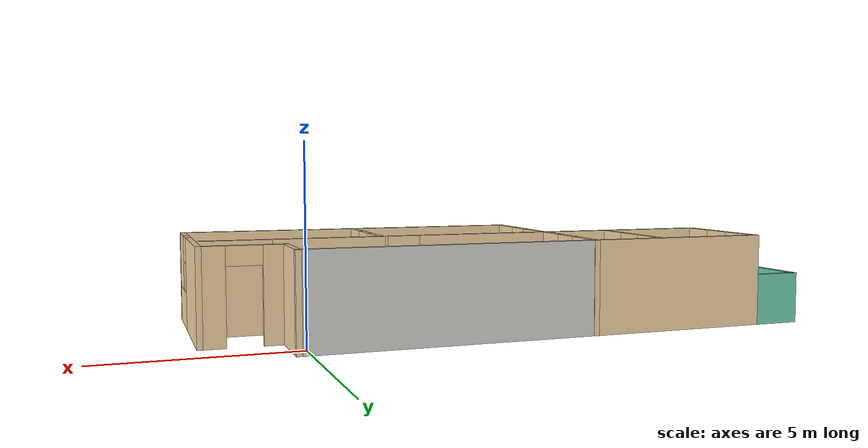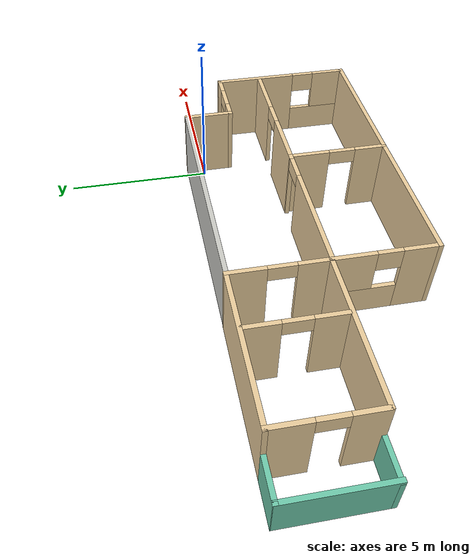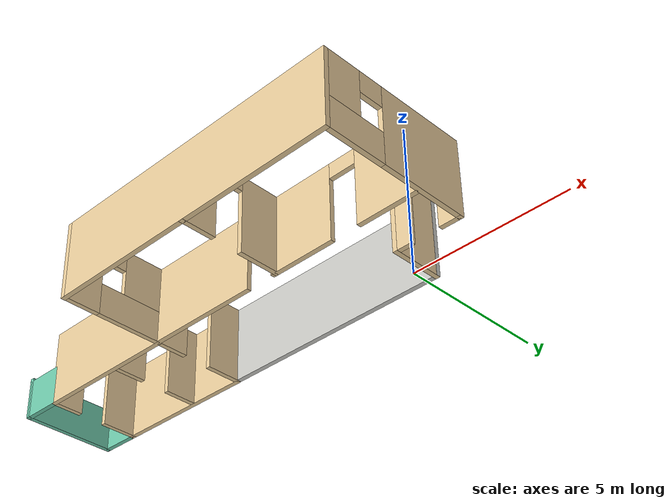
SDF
<?xml version='1.0'?>
<sdf version='1.6'>
  <model name='myhouse'>
    <pose frame=''>-5.65027 -2.655 0 0 -0 0</pose>
    <link name='Wall_0'>
      <pose frame=''>7.00027 1.625 0 0 -0 0</pose>
      <visual name='Wall_0_Visual_0'>
        <pose frame=''>-0.804089 0 1.25 0 -0 0</pose>
        <geometry>
          <box>
            <size>0.641821 0.15 2.5</size>
          </box>
        </geometry>
        <material>
          <script>
            <uri>file://media/materials/scripts/gazebo.material</uri>
            <name>Gazebo/Grey</name>
          </script>
          <ambient>0.921569 0.807843 0.615686 1</ambient>
        </material>
        <meta>
          <layer>0</layer>
        </meta>
      </visual>
      <collision name='Wall_0_Collision_0'>
        <geometry>
          <box>
            <size>0.641821 0.15 2.5</size>
          </box>
        </geometry>
        <pose frame=''>-0.804089 0 1.25 0 -0 0</pose>
      </collision>
      <visual name='Wall_0_Visual_1'>
        <pose frame=''>0.770911 0 1.25 0 -0 0</pose>
        <geometry>
          <box>
            <size>0.708179 0.15 2.5</size>
          </box>
        </geometry>
        <material>
          <script>
            <uri>file://media/materials/scripts/gazebo.material</uri>
            <name>Gazebo/Grey</name>
          </script>
          <ambient>0.921569 0.807843 0.615686 1</ambient>
        </material>
        <meta>
          <layer>0</layer>
        </meta>
      </visual>
      <collision name='Wall_0_Collision_1'>
        <geometry>
          <box>
            <size>0.708179 0.15 2.5</size>
          </box>
        </geometry>
        <pose frame=''>0.770911 0 1.25 0 -0 0</pose>
      </collision>
      <visual name='Wall_0_Visual_2'>
        <pose frame=''>-0.033179 0 2.25 0 -0 0</pose>
        <geometry>
          <box>
            <size>0.9 0.15 0.5</size>
          </box>
        </geometry>
        <material>
          <script>
            <uri>file://media/materials/scripts/gazebo.material</uri>
            <name>Gazebo/Grey</name>
          </script>
          <ambient>0.921569 0.807843 0.615686 1</ambient>
        </material>
        <meta>
          <layer>0</layer>
        </meta>
      </visual>
      <collision name='Wall_0_Collision_2'>
        <geometry>
          <box>
            <size>0.9 0.15 0.5</size>
          </box>
        </geometry>
        <pose frame=''>-0.033179 0 2.25 0 -0 0</pose>
      </collision>
    </link>
    <link name='Wall_11'>
      <pose frame=''>5.50113 0.078954 0 0 -0 3.14159</pose>
      <visual name='Wall_11_Visual_0'>
        <pose frame=''>-1.5197 0 1.25 0 -0 0</pose>
        <geometry>
          <box>
            <size>1.9606 0.15 2.5</size>
          </box>
        </geometry>
        <material>
          <script>
            <uri>file://media/materials/scripts/gazebo.material</uri>
            <name>Gazebo/Grey</name>
          </script>
          <ambient>0.921569 0.807843 0.615686 1</ambient>
        </material>
        <meta>
          <layer>0</layer>
        </meta>
      </visual>
      <collision name='Wall_11_Collision_0'>
        <geometry>
          <box>
            <size>1.9606 0.15 2.5</size>
          </box>
        </geometry>
        <pose frame=''>-1.5197 0 1.25 0 -0 0</pose>
      </collision>
      <visual name='Wall_11_Visual_1'>
        <pose frame=''>1.4303 0 1.25 0 -0 0</pose>
        <geometry>
          <box>
            <size>2.13941 0.15 2.5</size>
          </box>
        </geometry>
        <material>
          <script>
            <uri>file://media/materials/scripts/gazebo.material</uri>
            <name>Gazebo/Grey</name>
          </script>
          <ambient>0.921569 0.807843 0.615686 1</ambient>
        </material>
        <meta>
          <layer>0</layer>
        </meta>
      </visual>
      <collision name='Wall_11_Collision_1'>
        <geometry>
          <box>
            <size>2.13941 0.15 2.5</size>
          </box>
        </geometry>
        <pose frame=''>1.4303 0 1.25 0 -0 0</pose>
      </collision>
      <visual name='Wall_11_Visual_2'>
        <pose frame=''>-0.089405 0 2.25 0 -0 0</pose>
        <geometry>
          <box>
            <size>0.9 0.15 0.5</size>
          </box>
        </geometry>
        <material>
          <script>
            <uri>file://media/materials/scripts/gazebo.material</uri>
            <name>Gazebo/Grey</name>
          </script>
          <ambient>0.921569 0.807843 0.615686 1</ambient>
        </material>
        <meta>
          <layer>0</layer>
        </meta>
      </visual>
      <collision name='Wall_11_Collision_2'>
        <geometry>
          <box>
            <size>0.9 0.15 0.5</size>
          </box>
        </geometry>
        <pose frame=''>-0.089405 0 2.25 0 -0 0</pose>
      </collision>
    </link>
    <link name='Wall_12'>
      <pose frame=''>3.07613 -1.57105 0 0 -0 -1.5708</pose>
      <visual name='Wall_12_Visual_0'>
        <pose frame=''>-1.01083 0 1.25 0 -0 0</pose>
        <geometry>
          <box>
            <size>1.42834 0.15 2.5</size>
          </box>
        </geometry>
        <material>
          <script>
            <uri>file://media/materials/scripts/gazebo.material</uri>
            <name>Gazebo/Grey</name>
          </script>
          <ambient>0.921569 0.807843 0.615686 1</ambient>
        </material>
        <meta>
          <layer>0</layer>
        </meta>
      </visual>
      <collision name='Wall_12_Collision_0'>
        <geometry>
          <box>
            <size>1.42834 0.15 2.5</size>
          </box>
        </geometry>
        <pose frame=''>-1.01083 0 1.25 0 -0 0</pose>
      </collision>
      <visual name='Wall_12_Visual_1'>
        <pose frame=''>1.16417 0 1.25 0 -0 0</pose>
        <geometry>
          <box>
            <size>1.12166 0.15 2.5</size>
          </box>
        </geometry>
        <material>
          <script>
            <uri>file://media/materials/scripts/gazebo.material</uri>
            <name>Gazebo/Grey</name>
          </script>
          <ambient>0.921569 0.807843 0.615686 1</ambient>
        </material>
        <meta>
          <layer>0</layer>
        </meta>
      </visual>
      <collision name='Wall_12_Collision_1'>
        <geometry>
          <box>
            <size>1.12166 0.15 2.5</size>
          </box>
        </geometry>
        <pose frame=''>1.16417 0 1.25 0 -0 0</pose>
      </collision>
      <visual name='Wall_12_Visual_2'>
        <pose frame=''>0.153338 0 2.25 0 -0 0</pose>
        <geometry>
          <box>
            <size>0.9 0.15 0.5</size>
          </box>
        </geometry>
        <material>
          <script>
            <uri>file://media/materials/scripts/gazebo.material</uri>
            <name>Gazebo/Grey</name>
          </script>
          <ambient>0.921569 0.807843 0.615686 1</ambient>
        </material>
        <meta>
          <layer>0</layer>
        </meta>
      </visual>
      <collision name='Wall_12_Collision_2'>
        <geometry>
          <box>
            <size>0.9 0.15 0.5</size>
          </box>
        </geometry>
        <pose frame=''>0.153338 0 2.25 0 -0 0</pose>
      </collision>
    </link>
    <link name='Wall_17'>
      <pose frame=''>0.651128 0.078954 0 0 -0 3.14159</pose>
      <visual name='Wall_17_Visual_0'>
        <pose frame=''>-2.3846 0 1.25 0 -0 0</pose>
        <geometry>
          <box>
            <size>0.230798 0.15 2.5</size>
          </box>
        </geometry>
        <material>
          <script>
            <uri>file://media/materials/scripts/gazebo.material</uri>
            <name>Gazebo/Grey</name>
          </script>
          <ambient>0.921569 0.807843 0.615686 1</ambient>
        </material>
        <meta>
          <layer>0</layer>
        </meta>
      </visual>
      <collision name='Wall_17_Collision_0'>
        <geometry>
          <box>
            <size>0.230798 0.15 2.5</size>
          </box>
        </geometry>
        <pose frame=''>-2.3846 0 1.25 0 -0 0</pose>
      </collision>
      <visual name='Wall_17_Visual_1'>
        <pose frame=''>0.565399 0 1.25 0 -0 0</pose>
        <geometry>
          <box>
            <size>3.8692 0.15 2.5</size>
          </box>
        </geometry>
        <material>
          <script>
            <uri>file://media/materials/scripts/gazebo.material</uri>
            <name>Gazebo/Grey</name>
          </script>
          <ambient>0.921569 0.807843 0.615686 1</ambient>
        </material>
        <meta>
          <layer>0</layer>
        </meta>
      </visual>
      <collision name='Wall_17_Collision_1'>
        <geometry>
          <box>
            <size>3.8692 0.15 2.5</size>
          </box>
        </geometry>
        <pose frame=''>0.565399 0 1.25 0 -0 0</pose>
      </collision>
      <visual name='Wall_17_Visual_2'>
        <pose frame=''>-1.8192 0 2.25 0 -0 0</pose>
        <geometry>
          <box>
            <size>0.9 0.15 0.5</size>
          </box>
        </geometry>
        <material>
          <script>
            <uri>file://media/materials/scripts/gazebo.material</uri>
            <name>Gazebo/Grey</name>
          </script>
          <ambient>0.921569 0.807843 0.615686 1</ambient>
        </material>
        <meta>
          <layer>0</layer>
        </meta>
      </visual>
      <collision name='Wall_17_Collision_2'>
        <geometry>
          <box>
            <size>0.9 0.15 0.5</size>
          </box>
        </geometry>
        <pose frame=''>-1.8192 0 2.25 0 -0 0</pose>
      </collision>
    </link>
    <link name='Wall_20'>
      <pose frame=''>-1.79973 -1.5595 0 0 -0 1.5708</pose>
      <visual name='Wall_20_Visual_0'>
        <pose frame=''>-1.13454 0 1.25 0 -0 0</pose>
        <geometry>
          <box>
            <size>1.21192 0.15 2.5</size>
          </box>
        </geometry>
        <material>
          <script>
            <uri>file://media/materials/scripts/gazebo.material</uri>
            <name>Gazebo/Grey</name>
          </script>
          <ambient>0.921569 0.807843 0.615686 1</ambient>
        </material>
        <meta>
          <layer>0</layer>
        </meta>
      </visual>
      <collision name='Wall_20_Collision_0'>
        <geometry>
          <box>
            <size>1.21192 0.15 2.5</size>
          </box>
        </geometry>
        <pose frame=''>-1.13454 0 1.25 0 -0 0</pose>
      </collision>
      <visual name='Wall_20_Visual_1'>
        <pose frame=''>0.605958 0 0.5 0 -0 0</pose>
        <geometry>
          <box>
            <size>2.26908 0.15 1</size>
          </box>
        </geometry>
        <material>
          <script>
            <uri>file://media/materials/scripts/gazebo.material</uri>
            <name>Gazebo/Grey</name>
          </script>
          <ambient>0.921569 0.807843 0.615686 1</ambient>
        </material>
        <meta>
          <layer>0</layer>
        </meta>
      </visual>
      <collision name='Wall_20_Collision_1'>
        <geometry>
          <box>
            <size>2.26908 0.15 1</size>
          </box>
        </geometry>
        <pose frame=''>0.605958 0 0.5 0 -0 0</pose>
      </collision>
      <visual name='Wall_20_Visual_2'>
        <pose frame=''>1.00596 0 1.75 0 -0 0</pose>
        <geometry>
          <box>
            <size>1.46908 0.15 1.5</size>
          </box>
        </geometry>
        <material>
          <script>
            <uri>file://media/materials/scripts/gazebo.material</uri>
            <name>Gazebo/Grey</name>
          </script>
          <ambient>0.921569 0.807843 0.615686 1</ambient>
        </material>
        <meta>
          <layer>0</layer>
        </meta>
      </visual>
      <collision name='Wall_20_Collision_2'>
        <geometry>
          <box>
            <size>1.46908 0.15 1.5</size>
          </box>
        </geometry>
        <pose frame=''>1.00596 0 1.75 0 -0 0</pose>
      </collision>
      <visual name='Wall_20_Visual_3'>
        <pose frame=''>-0.128584 0 2.15 0 -0 0</pose>
        <geometry>
          <box>
            <size>0.8 0.15 0.7</size>
          </box>
        </geometry>
        <material>
          <script>
            <uri>file://media/materials/scripts/gazebo.material</uri>
            <name>Gazebo/Grey</name>
          </script>
          <ambient>0.921569 0.807843 0.615686 1</ambient>
        </material>
        <meta>
          <layer>0</layer>
        </meta>
      </visual>
      <collision name='Wall_20_Collision_3'>
        <geometry>
          <box>
            <size>0.8 0.15 0.7</size>
          </box>
        </geometry>
        <pose frame=''>-0.128584 0 2.15 0 -0 0</pose>
      </collision>
    </link>
    <link name='Wall_29'>
      <collision name='Wall_29_Collision'>
        <geometry>
          <box>
            <size>1.74 0.15 2.5</size>
          </box>
        </geometry>
        <pose frame=''>0 0 1.25 0 -0 0</pose>
      </collision>
      <visual name='Wall_29_Visual'>
        <pose frame=''>0 0 1.25 0 -0 0</pose>
        <geometry>
          <box>
            <size>1.74 0.15 2.5</size>
          </box>
        </geometry>
        <material>
          <script>
            <uri>file://media/materials/scripts/gazebo.material</uri>
            <name>Gazebo/Grey</name>
          </script>
          <ambient>0.921569 0.807843 0.615686 1</ambient>
        </material>
        <meta>
          <layer>0</layer>
        </meta>
      </visual>
      <pose frame=''>5.95027 2.42 0 0 -0 1.5708</pose>
    </link>
    <link name='Wall_30'>
      <collision name='Wall_30_Collision'>
        <geometry>
          <box>
            <size>7.75 0.15 2.5</size>
          </box>
        </geometry>
        <pose frame=''>0 0 1.25 0 -0 0</pose>
      </collision>
      <visual name='Wall_30_Visual'>
        <pose frame=''>0 0 1.25 0 -0 0</pose>
        <geometry>
          <box>
            <size>7.75 0.15 2.5</size>
          </box>
        </geometry>
        <material>
          <script>
            <uri>file://media/materials/scripts/gazebo.material</uri>
            <name>Gazebo/CeilingTiled</name>
          </script>
          <ambient>0.921569 0.807843 0.615686 1</ambient>
        </material>
        <meta>
          <layer>0</layer>
        </meta>
      </visual>
      <pose frame=''>2.15027 3.215 0 0 -0 3.14159</pose>
    </link>
    <link name='Wall_32'>
      <pose frame=''>-1.79973 1.6655 0 0 -0 1.5708</pose>
      <visual name='Wall_32_Visual_0'>
        <pose frame=''>-1.09237 0 1.25 0 -0 0</pose>
        <geometry>
          <box>
            <size>1.08427 0.15 2.5</size>
          </box>
        </geometry>
        <material>
          <script>
            <uri>file://media/materials/scripts/gazebo.material</uri>
            <name>Gazebo/Grey</name>
          </script>
          <ambient>0.921569 0.807843 0.615686 1</ambient>
        </material>
        <meta>
          <layer>0</layer>
        </meta>
      </visual>
      <collision name='Wall_32_Collision_0'>
        <geometry>
          <box>
            <size>1.08427 0.15 2.5</size>
          </box>
        </geometry>
        <pose frame=''>-1.09237 0 1.25 0 -0 0</pose>
      </collision>
      <visual name='Wall_32_Visual_1'>
        <pose frame=''>0.992134 0 1.25 0 -0 0</pose>
        <geometry>
          <box>
            <size>1.28473 0.15 2.5</size>
          </box>
        </geometry>
        <material>
          <script>
            <uri>file://media/materials/scripts/gazebo.material</uri>
            <name>Gazebo/Grey</name>
          </script>
          <ambient>0.921569 0.807843 0.615686 1</ambient>
        </material>
        <meta>
          <layer>0</layer>
        </meta>
      </visual>
      <collision name='Wall_32_Collision_1'>
        <geometry>
          <box>
            <size>1.28473 0.15 2.5</size>
          </box>
        </geometry>
        <pose frame=''>0.992134 0 1.25 0 -0 0</pose>
      </collision>
      <visual name='Wall_32_Visual_2'>
        <pose frame=''>-0.100233 0 2.25 0 -0 0</pose>
        <geometry>
          <box>
            <size>0.9 0.15 0.5</size>
          </box>
        </geometry>
        <material>
          <script>
            <uri>file://media/materials/scripts/gazebo.material</uri>
            <name>Gazebo/Grey</name>
          </script>
          <ambient>0.921569 0.807843 0.615686 1</ambient>
        </material>
        <meta>
          <layer>0</layer>
        </meta>
      </visual>
      <collision name='Wall_32_Collision_2'>
        <geometry>
          <box>
            <size>0.9 0.15 0.5</size>
          </box>
        </geometry>
        <pose frame=''>-0.100233 0 2.25 0 -0 0</pose>
      </collision>
    </link>
    <link name='Wall_37'>
      <collision name='Wall_37_Collision'>
        <geometry>
          <box>
            <size>5.1 0.15 2.5</size>
          </box>
        </geometry>
        <pose frame=''>0 0 1.25 0 -0 0</pose>
      </collision>
      <visual name='Wall_37_Visual'>
        <pose frame=''>0 0 1.25 0 -0 0</pose>
        <geometry>
          <box>
            <size>5.1 0.15 2.5</size>
          </box>
        </geometry>
        <material>
          <script>
            <uri>file://media/materials/scripts/gazebo.material</uri>
            <name>Gazebo/Grey</name>
          </script>
          <ambient>0.921569 0.807843 0.615686 1</ambient>
        </material>
        <meta>
          <layer>0</layer>
        </meta>
      </visual>
      <pose frame=''>-4.27473 3.225 0 0 -0 3.14159</pose>
    </link>
    <link name='Wall_51'>
      <pose frame=''>-3.76973 1.695 0 0 -0 -1.5708</pose>
      <visual name='Wall_51_Visual_0'>
        <pose frame=''>-0.966083 0 1.25 0 -0 0</pose>
        <geometry>
          <box>
            <size>1.16783 0.15 2.5</size>
          </box>
        </geometry>
        <material>
          <script>
            <uri>file://media/materials/scripts/gazebo.material</uri>
            <name>Gazebo/Grey</name>
          </script>
          <ambient>0.921569 0.807843 0.615686 1</ambient>
        </material>
        <meta>
          <layer>0</layer>
        </meta>
      </visual>
      <collision name='Wall_51_Collision_0'>
        <geometry>
          <box>
            <size>1.16783 0.15 2.5</size>
          </box>
        </geometry>
        <pose frame=''>-0.966083 0 1.25 0 -0 0</pose>
      </collision>
      <visual name='Wall_51_Visual_1'>
        <pose frame=''>1.03392 0 1.25 0 -0 0</pose>
        <geometry>
          <box>
            <size>1.03217 0.15 2.5</size>
          </box>
        </geometry>
        <material>
          <script>
            <uri>file://media/materials/scripts/gazebo.material</uri>
            <name>Gazebo/Grey</name>
          </script>
          <ambient>0.921569 0.807843 0.615686 1</ambient>
        </material>
        <meta>
          <layer>0</layer>
        </meta>
      </visual>
      <collision name='Wall_51_Collision_1'>
        <geometry>
          <box>
            <size>1.03217 0.15 2.5</size>
          </box>
        </geometry>
        <pose frame=''>1.03392 0 1.25 0 -0 0</pose>
      </collision>
      <visual name='Wall_51_Visual_2'>
        <pose frame=''>0.067833 0 2.25 0 -0 0</pose>
        <geometry>
          <box>
            <size>0.9 0.15 0.5</size>
          </box>
        </geometry>
        <material>
          <script>
            <uri>file://media/materials/scripts/gazebo.material</uri>
            <name>Gazebo/Grey</name>
          </script>
          <ambient>0.921569 0.807843 0.615686 1</ambient>
        </material>
        <meta>
          <layer>0</layer>
        </meta>
      </visual>
      <collision name='Wall_51_Collision_2'>
        <geometry>
          <box>
            <size>0.9 0.15 0.5</size>
          </box>
        </geometry>
        <pose frame=''>0.067833 0 2.25 0 -0 0</pose>
      </collision>
    </link>
    <link name='Wall_55'>
      <pose frame=''>-6.73773 1.6725 0 0 -0 -1.5708</pose>
      <visual name='Wall_55_Visual_0'>
        <pose frame=''>-0.974197 0 1.25 0 -0 0</pose>
        <geometry>
          <box>
            <size>1.30661 0.15 2.5</size>
          </box>
        </geometry>
        <material>
          <script>
            <uri>file://media/materials/scripts/gazebo.material</uri>
            <name>Gazebo/Grey</name>
          </script>
          <ambient>0.921569 0.807843 0.615686 1</ambient>
        </material>
        <meta>
          <layer>0</layer>
        </meta>
      </visual>
      <collision name='Wall_55_Collision_0'>
        <geometry>
          <box>
            <size>1.30661 0.15 2.5</size>
          </box>
        </geometry>
        <pose frame=''>-0.974197 0 1.25 0 -0 0</pose>
      </collision>
      <visual name='Wall_55_Visual_1'>
        <pose frame=''>1.1033 0 1.25 0 -0 0</pose>
        <geometry>
          <box>
            <size>1.04839 0.15 2.5</size>
          </box>
        </geometry>
        <material>
          <script>
            <uri>file://media/materials/scripts/gazebo.material</uri>
            <name>Gazebo/Grey</name>
          </script>
          <ambient>0.921569 0.807843 0.615686 1</ambient>
        </material>
        <meta>
          <layer>0</layer>
        </meta>
      </visual>
      <collision name='Wall_55_Collision_1'>
        <geometry>
          <box>
            <size>1.04839 0.15 2.5</size>
          </box>
        </geometry>
        <pose frame=''>1.1033 0 1.25 0 -0 0</pose>
      </collision>
      <visual name='Wall_55_Visual_2'>
        <pose frame=''>0.129106 0 2.25 0 -0 0</pose>
        <geometry>
          <box>
            <size>0.9 0.15 0.5</size>
          </box>
        </geometry>
        <material>
          <script>
            <uri>file://media/materials/scripts/gazebo.material</uri>
            <name>Gazebo/Grey</name>
          </script>
          <ambient>0.921569 0.807843 0.615686 1</ambient>
        </material>
        <meta>
          <layer>0</layer>
        </meta>
      </visual>
      <collision name='Wall_55_Collision_2'>
        <geometry>
          <box>
            <size>0.9 0.15 0.5</size>
          </box>
        </geometry>
        <pose frame=''>0.129106 0 2.25 0 -0 0</pose>
      </collision>
    </link>
    <link name='Wall_6'>
      <pose frame=''>8.05027 -0.8 0 0 -0 -1.5708</pose>
      <visual name='Wall_6_Visual_0'>
        <pose frame=''>-1.02355 0 1.25 0 -0 0</pose>
        <geometry>
          <box>
            <size>2.95291 0.15 2.5</size>
          </box>
        </geometry>
        <material>
          <script>
            <uri>file://media/materials/scripts/gazebo.material</uri>
            <name>Gazebo/Grey</name>
          </script>
          <ambient>0.921569 0.807843 0.615686 1</ambient>
        </material>
        <meta>
          <layer>0</layer>
        </meta>
      </visual>
      <collision name='Wall_6_Collision_0'>
        <geometry>
          <box>
            <size>2.95291 0.15 2.5</size>
          </box>
        </geometry>
        <pose frame=''>-1.02355 0 1.25 0 -0 0</pose>
      </collision>
      <visual name='Wall_6_Visual_1'>
        <pose frame=''>1.47645 0 0.5 0 -0 0</pose>
        <geometry>
          <box>
            <size>2.04709 0.15 1</size>
          </box>
        </geometry>
        <material>
          <script>
            <uri>file://media/materials/scripts/gazebo.material</uri>
            <name>Gazebo/Grey</name>
          </script>
          <ambient>0.921569 0.807843 0.615686 1</ambient>
        </material>
        <meta>
          <layer>0</layer>
        </meta>
      </visual>
      <collision name='Wall_6_Collision_1'>
        <geometry>
          <box>
            <size>2.04709 0.15 1</size>
          </box>
        </geometry>
        <pose frame=''>1.47645 0 0.5 0 -0 0</pose>
      </collision>
      <visual name='Wall_6_Visual_2'>
        <pose frame=''>1.87645 0 1.75 0 -0 0</pose>
        <geometry>
          <box>
            <size>1.24709 0.15 1.5</size>
          </box>
        </geometry>
        <material>
          <script>
            <uri>file://media/materials/scripts/gazebo.material</uri>
            <name>Gazebo/Grey</name>
          </script>
          <ambient>0.921569 0.807843 0.615686 1</ambient>
        </material>
        <meta>
          <layer>0</layer>
        </meta>
      </visual>
      <collision name='Wall_6_Collision_2'>
        <geometry>
          <box>
            <size>1.24709 0.15 1.5</size>
          </box>
        </geometry>
        <pose frame=''>1.87645 0 1.75 0 -0 0</pose>
      </collision>
      <visual name='Wall_6_Visual_3'>
        <pose frame=''>0.852906 0 2.15 0 -0 0</pose>
        <geometry>
          <box>
            <size>0.8 0.15 0.7</size>
          </box>
        </geometry>
        <material>
          <script>
            <uri>file://media/materials/scripts/gazebo.material</uri>
            <name>Gazebo/Grey</name>
          </script>
          <ambient>0.921569 0.807843 0.615686 1</ambient>
        </material>
        <meta>
          <layer>0</layer>
        </meta>
      </visual>
      <collision name='Wall_6_Collision_3'>
        <geometry>
          <box>
            <size>0.8 0.15 0.7</size>
          </box>
        </geometry>
        <pose frame=''>0.852906 0 2.15 0 -0 0</pose>
      </collision>
    </link>
    <link name='Wall_66'>
      <collision name='Wall_66_Collision'>
        <geometry>
          <box>
            <size>5.07 0.15 2.5</size>
          </box>
        </geometry>
        <pose frame=''>0 0 1.25 0 -0 0</pose>
      </collision>
      <visual name='Wall_66_Visual'>
        <pose frame=''>0 0 1.25 0 -0 0</pose>
        <geometry>
          <box>
            <size>5.07 0.15 2.5</size>
          </box>
        </geometry>
        <material>
          <script>
            <uri>file://media/materials/scripts/gazebo.material</uri>
            <name>Gazebo/Grey</name>
          </script>
          <ambient>0.921569 0.807843 0.615686 1</ambient>
        </material>
        <meta>
          <layer>0</layer>
        </meta>
      </visual>
      <pose frame=''>-4.25973 0.106 0 0 -0 3.14159</pose>
    </link>
    <link name='Wall_69'>
      <collision name='Wall_69_Collision'>
        <geometry>
          <box>
            <size>1.48098 0.15 1.3</size>
          </box>
        </geometry>
        <pose frame=''>0 0 0.65 0 -0 0</pose>
      </collision>
      <visual name='Wall_69_Visual'>
        <pose frame=''>0 0 0.65 0 -0 0</pose>
        <geometry>
          <box>
            <size>1.48098 0.15 1.3</size>
          </box>
        </geometry>
        <material>
          <script>
            <uri>file://media/materials/scripts/gazebo.material</uri>
            <name>Gazebo/Grey</name>
          </script>
          <ambient>0.435294 0.796078 0.67451 1</ambient>
        </material>
        <meta>
          <layer>0</layer>
        </meta>
      </visual>
      <pose frame=''>-7.38473 0.1055 0 0 -0 -3.14084</pose>
    </link>
    <link name='Wall_70'>
      <collision name='Wall_70_Collision'>
        <geometry>
          <box>
            <size>3.25 0.15 1.4</size>
          </box>
        </geometry>
        <pose frame=''>0 0 0.7 0 -0 0</pose>
      </collision>
      <visual name='Wall_70_Visual'>
        <pose frame=''>0 0 0.7 0 -0 0</pose>
        <geometry>
          <box>
            <size>3.25 0.15 1.4</size>
          </box>
        </geometry>
        <material>
          <script>
            <uri>file://media/materials/scripts/gazebo.material</uri>
            <name>Gazebo/Grey</name>
          </script>
          <ambient>0.435294 0.796078 0.67451 1</ambient>
        </material>
        <meta>
          <layer>0</layer>
        </meta>
      </visual>
      <pose frame=''>-8.04973 1.655 0 0 -0 1.5708</pose>
    </link>
    <link name='Wall_74'>
      <collision name='Wall_74_Collision'>
        <geometry>
          <box>
            <size>1.46 0.15 1.4</size>
          </box>
        </geometry>
        <pose frame=''>0 0 0.7 0 -0 0</pose>
      </collision>
      <visual name='Wall_74_Visual'>
        <pose frame=''>0 0 0.7 0 -0 0</pose>
        <geometry>
          <box>
            <size>1.46 0.15 1.4</size>
          </box>
        </geometry>
        <material>
          <script>
            <uri>file://media/materials/scripts/gazebo.material</uri>
            <name>Gazebo/Grey</name>
          </script>
          <ambient>0.435294 0.796078 0.67451 1</ambient>
        </material>
        <meta>
          <layer>0</layer>
        </meta>
      </visual>
      <pose frame=''>-7.39273 3.225 0 0 -0 3.14159</pose>
    </link>
    <link name='Wall_9'>
      <collision name='Wall_9_Collision'>
        <geometry>
          <box>
            <size>10 0.15 2.5</size>
          </box>
        </geometry>
        <pose frame=''>0 0 1.25 0 -0 0</pose>
      </collision>
      <visual name='Wall_9_Visual'>
        <pose frame=''>0 0 1.25 0 -0 0</pose>
        <geometry>
          <box>
            <size>10 0.15 2.5</size>
          </box>
        </geometry>
        <material>
          <script>
            <uri>file://media/materials/scripts/gazebo.material</uri>
            <name>Gazebo/Grey</name>
          </script>
          <ambient>0.921569 0.807843 0.615686 1</ambient>
        </material>
        <meta>
          <layer>0</layer>
        </meta>
      </visual>
      <pose frame=''>3.12527 -3.225 0 0 -0 3.14159</pose>
    </link>
    <static>1</static>
  </model>
</sdf>
